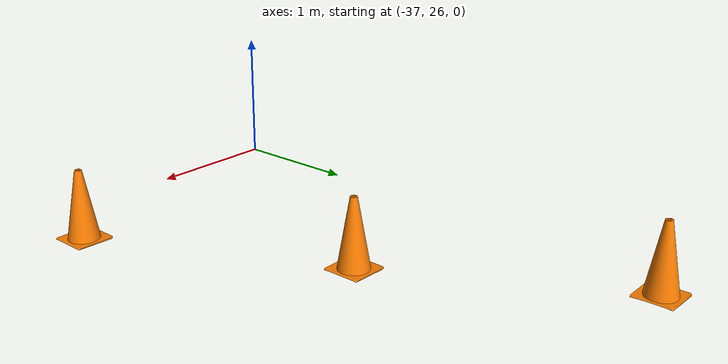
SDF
<sdf version="1.7">
 <world name="IARRC Urban">
  <model name="TallerCone_clone_125">
   <link name="link_0">
    <inertial>
     <mass>0.068</mass>
     <inertia>
      <ixx>0.000367263</ixx>
      <ixy>0</ixy>
      <ixz>0</ixz>
      <iyy>0.000367263</iyy>
      <iyz>0</iyz>
      <izz>0.000165927</izz>
     </inertia>
    </inertial>
    <visual name="visual">
     <geometry><mesh><uri>model://TallerCone/traffic_cone.stl</uri><scale>0.01 0.01 0.01</scale></mesh></geometry>
     <material>
      <lighting>1</lighting>
      <script><uri>file://media/materials/scripts/gazebo.material</uri><name>Gazebo/Grey</name></script>
      <ambient>0.4 0.2 0 1</ambient>
      <diffuse>1 0.5 0 1</diffuse>
      <specular>0.01 0.01 0.01 1</specular>
      <emissive>0 0 0 1</emissive>
     </material>
    </visual>
    <collision name="collision">
     <geometry><mesh><uri>model://TallerCone/traffic_cone.stl</uri></mesh></geometry>
     <surface>
      <friction>
       <ode><mu>1</mu><mu2>1</mu2><fdir1>0 0 0</fdir1><slip1>0</slip1><slip2>0</slip2></ode>
       <torsional>
        <coefficient>1</coefficient>
        <patch_radius>0</patch_radius>
        <surface_radius>0</surface_radius>
        <use_patch_radius>1</use_patch_radius>
        <ode><slip>0</slip></ode>
       </torsional>
      </friction>
      <bounce><restitution_coefficient>0</restitution_coefficient><threshold>1e+06</threshold></bounce>
      <contact>
       <collide_without_contact>0</collide_without_contact>
       <collide_without_contact_bitmask>1</collide_without_contact_bitmask>
       <collide_bitmask>1</collide_bitmask>
       <ode>
        <soft_cfm>0</soft_cfm>
        <soft_erp>0.2</soft_erp>
        <kp>1e+13</kp>
        <kd>1</kd>
        <max_vel>0.01</max_vel>
        <min_depth>0</min_depth>
       </ode>
       <bullet>
        <split_impulse>1</split_impulse>
        <split_impulse_penetration_threshold>-0.01</split_impulse_penetration_threshold>
        <soft_cfm>0</soft_cfm>
        <soft_erp>0.2</soft_erp>
        <kp>1e+13</kp>
        <kd>1</kd>
       </bullet>
      </contact>
     </surface>
    </collision>
   </link>
   <static>1</static>
   <pose>-36.7494 29.9383 -0.034283 0 -0 0</pose>
  </model>
  <model name="TallerCone_clone_126">
   <link name="link_0">
    <inertial>
     <mass>0.068</mass>
     <inertia>
      <ixx>0.000367263</ixx>
      <ixy>0</ixy>
      <ixz>0</ixz>
      <iyy>0.000367263</iyy>
      <iyz>0</iyz>
      <izz>0.000165927</izz>
     </inertia>
    </inertial>
    <visual name="visual">
     <geometry><mesh><uri>model://TallerCone/traffic_cone.stl</uri><scale>0.01 0.01 0.01</scale></mesh></geometry>
     <material>
      <lighting>1</lighting>
      <script><uri>file://media/materials/scripts/gazebo.material</uri><name>Gazebo/Grey</name></script>
      <ambient>0.4 0.2 0 1</ambient>
      <diffuse>1 0.5 0 1</diffuse>
      <specular>0.01 0.01 0.01 1</specular>
      <emissive>0 0 0 1</emissive>
     </material>
    </visual>
    <collision name="collision">
     <geometry><mesh><uri>model://TallerCone/traffic_cone.stl</uri></mesh></geometry>
     <surface>
      <friction>
       <ode><mu>1</mu><mu2>1</mu2><fdir1>0 0 0</fdir1><slip1>0</slip1><slip2>0</slip2></ode>
       <torsional>
        <coefficient>1</coefficient>
        <patch_radius>0</patch_radius>
        <surface_radius>0</surface_radius>
        <use_patch_radius>1</use_patch_radius>
        <ode><slip>0</slip></ode>
       </torsional>
      </friction>
      <bounce><restitution_coefficient>0</restitution_coefficient><threshold>1e+06</threshold></bounce>
      <contact>
       <collide_without_contact>0</collide_without_contact>
       <collide_without_contact_bitmask>1</collide_without_contact_bitmask>
       <collide_bitmask>1</collide_bitmask>
       <ode>
        <soft_cfm>0</soft_cfm>
        <soft_erp>0.2</soft_erp>
        <kp>1e+13</kp>
        <kd>1</kd>
        <max_vel>0.01</max_vel>
        <min_depth>0</min_depth>
       </ode>
       <bullet>
        <split_impulse>1</split_impulse>
        <split_impulse_penetration_threshold>-0.01</split_impulse_penetration_threshold>
        <soft_cfm>0</soft_cfm>
        <soft_erp>0.2</soft_erp>
        <kp>1e+13</kp>
        <kd>1</kd>
       </bullet>
      </contact>
     </surface>
    </collision>
   </link>
   <static>1</static>
   <pose>-35.773 28.2495 -0.034283 0 -0 0</pose>
  </model>
  <model name="TallerCone_clone_127">
   <link name="link_0">
    <inertial>
     <mass>0.068</mass>
     <inertia>
      <ixx>0.000367263</ixx>
      <ixy>0</ixy>
      <ixz>0</ixz>
      <iyy>0.000367263</iyy>
      <iyz>0</iyz>
      <izz>0.000165927</izz>
     </inertia>
    </inertial>
    <visual name="visual">
     <geometry><mesh><uri>model://TallerCone/traffic_cone.stl</uri><scale>0.01 0.01 0.01</scale></mesh></geometry>
     <material>
      <lighting>1</lighting>
      <script><uri>file://media/materials/scripts/gazebo.material</uri><name>Gazebo/Grey</name></script>
      <ambient>0.4 0.2 0 1</ambient>
      <diffuse>1 0.5 0 1</diffuse>
      <specular>0.01 0.01 0.01 1</specular>
      <emissive>0 0 0 1</emissive>
     </material>
    </visual>
    <collision name="collision">
     <geometry><mesh><uri>model://TallerCone/traffic_cone.stl</uri></mesh></geometry>
     <surface>
      <friction>
       <ode><mu>1</mu><mu2>1</mu2><fdir1>0 0 0</fdir1><slip1>0</slip1><slip2>0</slip2></ode>
       <torsional>
        <coefficient>1</coefficient>
        <patch_radius>0</patch_radius>
        <surface_radius>0</surface_radius>
        <use_patch_radius>1</use_patch_radius>
        <ode><slip>0</slip></ode>
       </torsional>
      </friction>
      <bounce><restitution_coefficient>0</restitution_coefficient><threshold>1e+06</threshold></bounce>
      <contact>
       <collide_without_contact>0</collide_without_contact>
       <collide_without_contact_bitmask>1</collide_without_contact_bitmask>
       <collide_bitmask>1</collide_bitmask>
       <ode>
        <soft_cfm>0</soft_cfm>
        <soft_erp>0.2</soft_erp>
        <kp>1e+13</kp>
        <kd>1</kd>
        <max_vel>0.01</max_vel>
        <min_depth>0</min_depth>
       </ode>
       <bullet>
        <split_impulse>1</split_impulse>
        <split_impulse_penetration_threshold>-0.01</split_impulse_penetration_threshold>
        <soft_cfm>0</soft_cfm>
        <soft_erp>0.2</soft_erp>
        <kp>1e+13</kp>
        <kd>1</kd>
       </bullet>
      </contact>
     </surface>
    </collision>
   </link>
   <static>1</static>
   <pose>-34.8812 26.4925 -0.034283 0 -0 0</pose>
  </model>
 </world>
</sdf>
